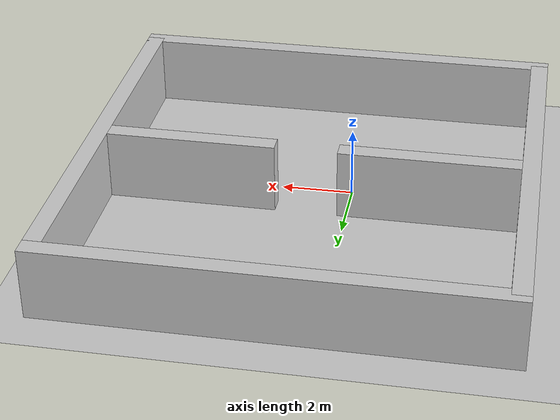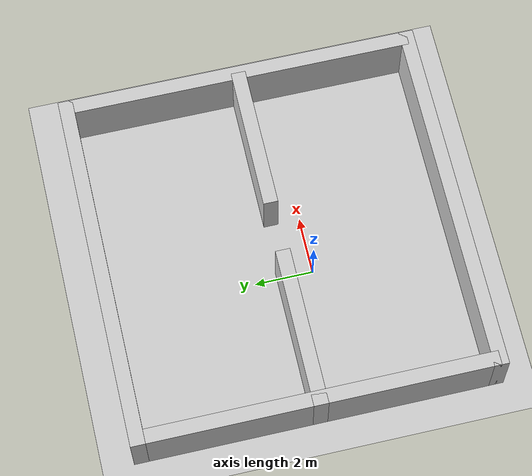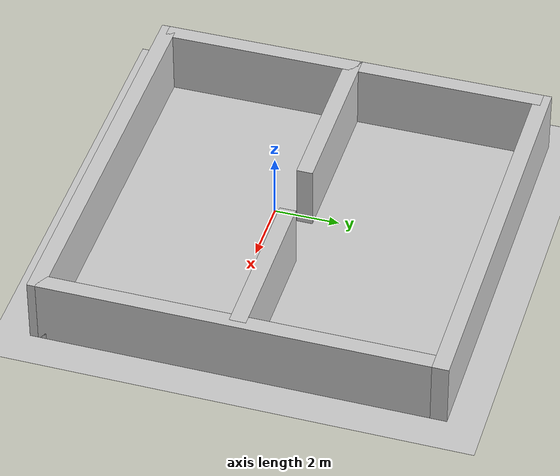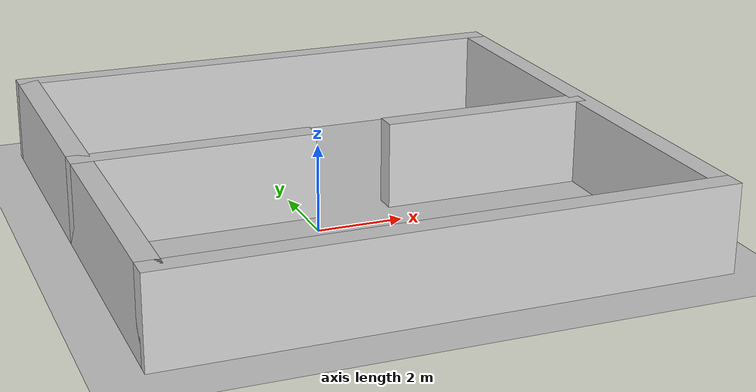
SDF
<?xml version="1.0" ?>
<sdf version="1.5">

  <plugin
      filename="ignition-gazebo-sensors-system"
      name="ignition::gazebo::systems::Sensors">
      <render_engine>ogre2</render_engine>
    </plugin>
  <world name="empty_world_ign"> <!-- Important: the world name should be the same as the filename -->
    <plugin
      filename="ignition-gazebo-sensors-system"
      name="ignition::gazebo::systems::Sensors">
      <render_engine>ogre2</render_engine>
    </plugin>

    <physics name='4ms' type='ignored'>
            <max_step_size>0.004</max_step_size>
            <real_time_factor>1.0</real_time_factor>
    </physics>
    <plugin name='ignition::gazebo::systems::Physics' filename='ignition-gazebo-physics-system'/>
    <plugin name='ignition::gazebo::systems::UserCommands' filename='ignition-gazebo-user-commands-system'/>
    <plugin name='ignition::gazebo::systems::SceneBroadcaster' filename='ignition-gazebo-scene-broadcaster-system'/>
    <gui>
        <!-- World control -->
      <plugin filename="WorldControl" name="World control">
        <ignition-gui>
          <title>World control</title>
          <property type="bool" key="showTitleBar">false</property>
          <property type="bool" key="resizable">false</property>
          <property type="double" key="height">72</property>
          <property type="double" key="width">121</property>
          <property type="double" key="z">1</property>

          <property type="string" key="state">floating</property>
          <anchors target="3D View">
            <line own="left" target="left"/>
            <line own="bottom" target="bottom"/>
          </anchors>
        </ignition-gui>

        <play_pause>true</play_pause>
        <step>true</step>
        <start_paused>true</start_paused>

      </plugin>
        <plugin name='3D View' filename='GzScene3D'>
                <ignition-gui>
                    <title>3D View</title>
                    <property type='bool' key='showTitleBar'>0</property>
                    <property type='string' key='state'>docked</property>
                </ignition-gui>
                <engine>ogre2</engine>
                <scene>scene</scene>
                <ambient_light>0.4 0.4 0.4</ambient_light>
                <background_color>0.8 0.8 0.8</background_color>
                <camera_pose>-6 0 6 0 0.5 0</camera_pose>
        </plugin>
        <plugin name='World stats' filename='WorldStats'>
                <ignition-gui>
                    <title>World stats</title>
                    <property type='bool' key='showTitleBar'>0</property>
                    <property type='bool' key='resizable'>0</property>
                    <property type='double' key='height'>110</property>
                    <property type='double' key='width'>290</property>
                    <property type='double' key='z'>1</property>
                    <property type='string' key='state'>floating</property>
                    <anchors target='3D View'>
                        <line own='right' target='right'/>
                        <line own='bottom' target='bottom'/>
                    </anchors>
                </ignition-gui>
                <sim_time>1</sim_time>
                <real_time>1</real_time>
                <real_time_factor>1</real_time_factor>
                <iterations>1</iterations>
            </plugin>
        <plugin filename="KeyPublisher" name="Key publisher">
            <anchors target="3D View">
                        <line own="right" target="right"/>
                        <line own="top" target="top"/>
                    </anchors>
            <ignition-gui>

                <property key="resizable" type="bool">false</property>
                <property key="width" type="double">5</property>
                <property key="height" type="double">5</property>
                <property key="state" type="string">floating</property>
                <property key="showTitleBar" type="bool">false</property>
            </ignition-gui>
        </plugin>
        <!-- Entity tree -->
        <plugin filename="EntityTree" name="Entity tree">
        </plugin>
        <!-- KeyPublisher plugin-->
            <plugin filename="KeyPublisher" name="Key Publisher"/>
    </gui>

    <!-- Shape of the UPO basement-->
    <model name="left_wall">
      <static>true</static>
      <pose>1.0 7.0 1.0 0 0 0</pose>
      <link name="link">
        <collision name="collision">
          <geometry>
            <box>
              <size>12.5 0.5 2.0</size>
            </box>
          </geometry>
        </collision>

        <visual name="visual">
          <geometry>
            <box>
              <size>12.5 0.5 2.0</size>
            </box>
          </geometry>
          <material>
            <ambient>0.8 0.8 0.8 1</ambient>
            <diffuse>0.8 0.8 0.8 1</diffuse>
            <specular>0.8 0.8 0.8 1</specular>
          </material>
        </visual>
      </link>
    </model>

    <model name="middle_wall_1">
      <static>true</static>
      <pose>4.5 1.0 1.0 0 0 0</pose>
      <link name="link">
        <collision name="collision">
          <geometry>
            <box>
              <size>5 0.5 2.0</size>
            </box>
          </geometry>
        </collision>

        <visual name="visual">
          <geometry>
            <box>
              <size>5 0.5 2.0</size>
            </box>
          </geometry>
          <material>
            <ambient>0.8 0.8 0.8 1</ambient>
            <diffuse>0.8 0.8 0.8 1</diffuse>
            <specular>0.8 0.8 0.8 1</specular>
          </material>
        </visual>
      </link>
    </model>

    <model name="middle_wall_2">
      <static>true</static>
      <pose>-2.5 1.0 1.0 0 0 0</pose>
      <link name="link">
        <collision name="collision">
          <geometry>
            <box>
              <size>5.5 0.5 2.0</size>
            </box>
          </geometry>
        </collision>
        <visual name="visual">
          <geometry>
            <box>
              <size>5.5 0.5 2.0</size>
            </box>
          </geometry>
          <material>
            <ambient>0.8 0.8 0.8 1</ambient>
            <diffuse>0.8 0.8 0.8 1</diffuse>
            <specular>0.8 0.8 0.8 1</specular>
          </material>
        </visual>
      </link>

    </model>

    <model name="right_wall">
      <static>true</static>
      <pose>1.0 -5.0 1.0 0 0 0</pose>
      <link name="link">
        <collision name="collision">
          <geometry>
            <box>
              <size>12.5 0.5 2.0</size>
            </box>
          </geometry>
        </collision>

        <visual name="visual">
          <geometry>
            <box>
              <size>12.5 0.5 2.0</size>
            </box>
          </geometry>
          <material>
            <ambient>0.8 0.8 0.8 1</ambient>
            <diffuse>0.8 0.8 0.8 1</diffuse>
            <specular>0.8 0.8 0.8 1</specular>
          </material>
        </visual>
      </link>
    </model>

    <model name="front_wall">
      <static>true</static>
      <pose>7.0 1 1.0 0 0 0</pose>
      <link name="link">
        <collision name="collision">
          <geometry>
            <box>
              <size>0.5 12 2.0</size>
            </box>
          </geometry>
        </collision>

        <visual name="visual">
          <geometry>
            <box>
              <size>0.5 12 2.0</size>
            </box>
          </geometry>
          <material>
            <ambient>0.8 0.8 0.8 1</ambient>
            <diffuse>0.8 0.8 0.8 1</diffuse>
            <specular>0.8 0.8 0.8 1</specular>
          </material>
        </visual>
      </link>
    </model>

    <model name="rear_wall">
      <static>true</static>
      <pose>-5.0 1 1.0 0 0 0</pose>
      <link name="link">
        <collision name="collision">
          <geometry>
            <box>
              <size>0.5 12 2.0</size>
            </box>
          </geometry>
        </collision>

        <visual name="visual">
          <geometry>
            <box>
              <size>0.5 12 2.0</size>
            </box>
          </geometry>
          <material>
            <ambient>0.8 0.8 0.8 1</ambient>
            <diffuse>0.8 0.8 0.8 1</diffuse>
            <specular>0.8 0.8 0.8 1</specular>
          </material>
        </visual>
      </link>
    </model>

    <light name='sun' type='directional'>
      <cast_shadows>1</cast_shadows>
      <pose frame=''>0 0 10 0 -0 0</pose>
      <diffuse>0.8 0.8 0.8 1</diffuse>
      <specular>0.2 0.2 0.2 1</specular>
      <attenuation>
        <range>1000</range>
        <constant>0.9</constant>
        <linear>0.01</linear>
        <quadratic>0.001</quadratic>
      </attenuation>
      <direction>-0.5 0.1 -0.9</direction>
    </light>

    <model name="ground_plane">
      <static>true</static>
      <link name="link">
        <collision name="collision">
          <geometry>
            <plane>
              <normal>0 0 1</normal>
              <size>100 100</size>
            </plane>
          </geometry>
        </collision>
        <visual name="visual">
          <geometry>
            <plane>
              <normal>0 0 1</normal>
              <size>100 100</size>
            </plane>
          </geometry>
          <material>
            <ambient>0.8 0.8 0.8 1</ambient>
            <diffuse>0.8 0.8 0.8 1</diffuse>
            <specular>0.8 0.8 0.8 1</specular>
          </material>
        </visual>
      </link>
      <static>true</static>
    </model>

    <gravity>0 0 -9.8</gravity>

    <magnetic_field>6e-06 2.3e-05 -4.2e-05</magnetic_field>

    <atmosphere type='adiabatic'/>

    <light name='user_spot_light_0' type='spot'>
      <diffuse>0.5 0.5 0.5 1</diffuse>
      <specular>0.1 0.1 0.1 1</specular>
      <direction>0 0 -1</direction>
      <attenuation>
        <range>20</range>
        <constant>0.5</constant>
        <linear>0.01</linear>
        <quadratic>0.001</quadratic>
      </attenuation>
      <cast_shadows>0</cast_shadows>
      <spot>
        <inner_angle>0.6</inner_angle>
        <outer_angle>1</outer_angle>
        <falloff>1</falloff>
      </spot>
    </light>

  </world>
</sdf>
